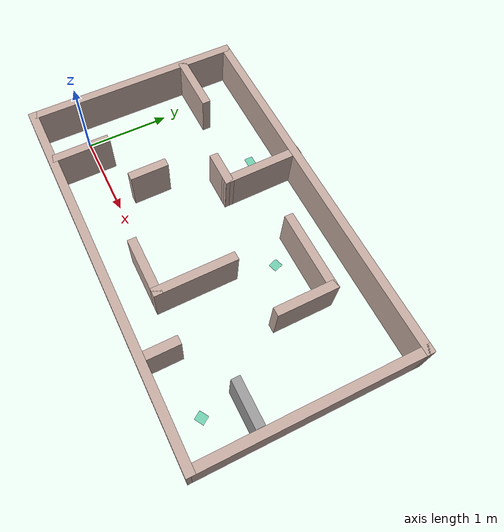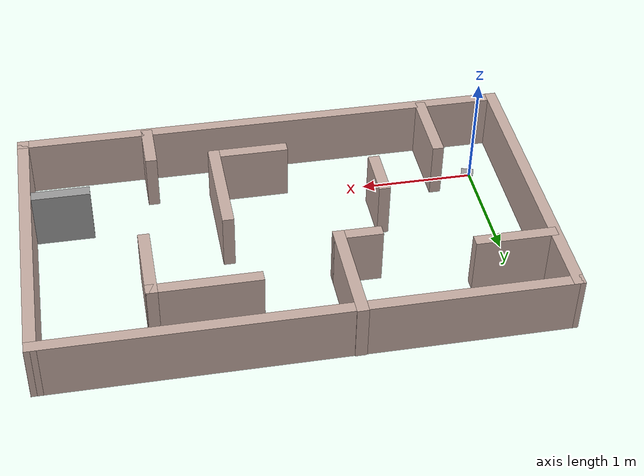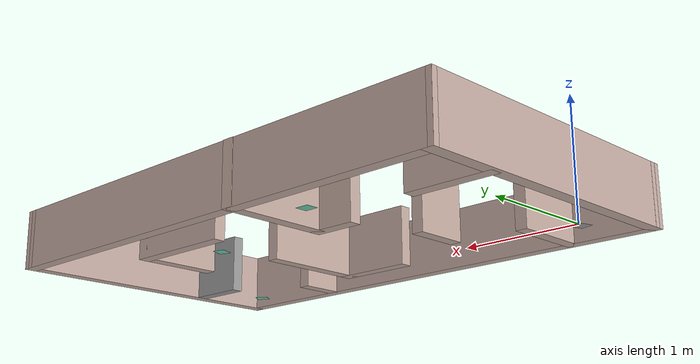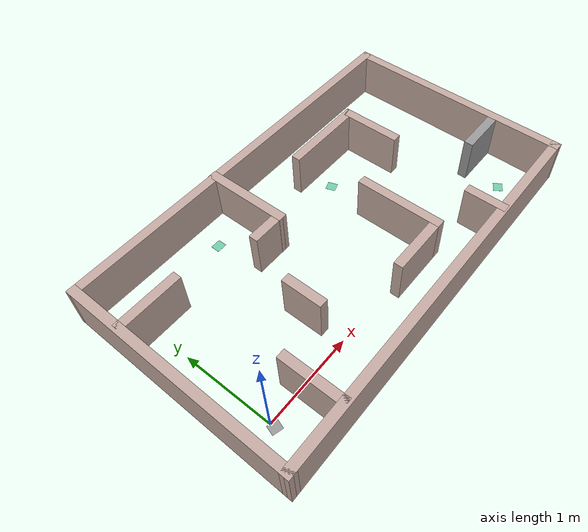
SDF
<?xml version='1.0'?>
<sdf version='1.7'>
  <model name='robo_map1'>
    <pose>1.8545 0.753018 0 0 -0 0</pose>

    <link name='Wall_13'>
      <collision name='Wall_13_Collision'>
        <geometry>
          <box>
            <size>4.409 0.1 0.5</size>
          </box>
        </geometry>
        <pose>0 0 0.25 0 -0 0</pose>
      </collision>
      <visual name='Wall_13_Visual'>
        <pose>0 0 0.25 0 -0 0</pose>
        <geometry>
          <box>
            <size>4.409 0.1 0.5</size>
          </box>
        </geometry>
        <material>
          <script>
            <uri>file://media/materials/scripts/gazebo.material</uri>
            <name>Gazebo/Grey</name>
          </script>
          <ambient>0.760784 0.662745 0.627451 1</ambient>
        </material>
        <meta>
          <layer>0</layer>
        </meta>
      </visual>
      <pose>0.009 1.24698 0 0 -0 0</pose>
    </link>
    <link name='Wall_15'>
      <collision name='Wall_15_Collision'>
        <geometry>
          <box>
            <size>4.409 0.1 0.5</size>
          </box>
        </geometry>
        <pose>0 0 0.25 0 -0 0</pose>
      </collision>
      <visual name='Wall_15_Visual'>
        <pose>0 0 0.25 0 -0 0</pose>
        <geometry>
          <box>
            <size>4.409 0.1 0.5</size>
          </box>
        </geometry>
        <material>
          <script>
            <uri>file://media/materials/scripts/gazebo.material</uri>
            <name>Gazebo/Grey</name>
          </script>
          <ambient>0.760784 0.662745 0.627451 1</ambient>
        </material>
        <meta>
          <layer>0</layer>
        </meta>
      </visual>
      <pose>-0.009 -1.25302 0 0 -0 0</pose>
    </link>
    <link name='Wall_17'>
      <collision name='Wall_17_Collision'>
        <geometry>
          <box>
            <size>2.60006 0.1 0.5</size>
          </box>
        </geometry>
        <pose>0 0 0.25 0 -0 0</pose>
      </collision>
      <visual name='Wall_17_Visual'>
        <pose>0 0 0.25 0 -0 0</pose>
        <geometry>
          <box>
            <size>2.60006 0.1 0.5</size>
          </box>
        </geometry>
        <material>
          <script>
            <uri>file://media/materials/scripts/gazebo.material</uri>
            <name>Gazebo/Grey</name>
          </script>
          <ambient>0.760784 0.662745 0.627451 1</ambient>
        </material>
        <meta>
          <layer>0</layer>
        </meta>
      </visual>
      <pose>2.1545 -0.003018 0 0 -0 -1.578</pose>
    </link>
    <link name='Wall_19'>
      <collision name='Wall_19_Collision'>
        <geometry>
          <box>
            <size>0.7 0.1 0.5</size>
          </box>
        </geometry>
        <pose>0 0 0.25 0 -0 0</pose>
      </collision>
      <visual name='Wall_19_Visual'>
        <pose>0 0 0.25 0 -0 0</pose>
        <geometry>
          <box>
            <size>0.7 0.1 0.5</size>
          </box>
        </geometry>
        <material>
          <script>
            <uri>file://media/materials/scripts/gazebo.material</uri>
            <name>Gazebo/Grey</name>
          </script>
          <ambient>0.760784 0.662745 0.627451 1</ambient>
        </material>
        <meta>
          <layer>0</layer>
        </meta>
      </visual>
      <pose>-1.4815 -0.926018 0 0 -0 -1.5708</pose>
    </link>
    <link name='Wall_21'>
      <collision name='Wall_21_Collision'>
        <geometry>
          <box>
            <size>0.95 0.1 0.5</size>
          </box>
        </geometry>
        <pose>0 0 0.25 0 -0 0</pose>
      </collision>
      <visual name='Wall_21_Visual'>
        <pose>0 0 0.25 0 -0 0</pose>
        <geometry>
          <box>
            <size>0.95 0.1 0.5</size>
          </box>
        </geometry>
        <material>
          <script>
            <uri>file://media/materials/scripts/gazebo.material</uri>
            <name>Gazebo/Grey</name>
          </script>
          <ambient>0.760784 0.662745 0.627451 1</ambient>
        </material>
        <meta>
          <layer>0</layer>
        </meta>
      </visual>
      <pose>-0.388 0.827982 0 0 -0 -1.56256</pose>
    </link>
    <link name='Wall_22'>
      <collision name='Wall_22_Collision'>
        <geometry>
          <box>
            <size>0.415002 0.1 0.5</size>
          </box>
        </geometry>
        <pose>0 0 0.25 0 -0 0</pose>
      </collision>
      <visual name='Wall_22_Visual'>
        <pose>0 0 0.25 0 -0 0</pose>
        <geometry>
          <box>
            <size>0.415002 0.1 0.5</size>
          </box>
        </geometry>
        <material>
          <script>
            <uri>file://media/materials/scripts/gazebo.material</uri>
            <name>Gazebo/Grey</name>
          </script>
          <ambient>0.760784 0.662745 0.627451 1</ambient>
        </material>
        <meta>
          <layer>0</layer>
        </meta>
      </visual>
      <pose>-0.542 0.403482 0 0 -0 3.13842</pose>
    </link>
    <link name='Wall_24'>
      <collision name='Wall_24_Collision'>
        <geometry>
          <box>
            <size>0.450219 0.1 0.5</size>
          </box>
        </geometry>
        <pose>0 0 0.25 0 -0 0</pose>
      </collision>
      <visual name='Wall_24_Visual'>
        <pose>0 0 0.25 0 -0 0</pose>
        <geometry>
          <box>
            <size>0.450219 0.1 0.5</size>
          </box>
        </geometry>
        <material>
          <script>
            <uri>file://media/materials/scripts/gazebo.material</uri>
            <name>Gazebo/Grey</name>
          </script>
          <ambient>0.760784 0.662745 0.627451 1</ambient>
        </material>
        <meta>
          <layer>0</layer>
        </meta>
      </visual>
      <pose>-0.8895 -0.338018 0 0 -0 -1.5708</pose>
    </link>
    <link name='Wall_26'>
      <collision name='Wall_26_Collision'>
        <geometry>
          <box>
            <size>0.700417 0.1 0.5</size>
          </box>
        </geometry>
        <pose>0 0 0.25 0 -0 0</pose>
      </collision>
      <visual name='Wall_26_Visual'>
        <pose>0 0 0.25 0 -0 0</pose>
        <geometry>
          <box>
            <size>0.700417 0.1 0.5</size>
          </box>
        </geometry>
        <material>
          <script>
            <uri>file://media/materials/scripts/gazebo.material</uri>
            <name>Gazebo/Grey</name>
          </script>
          <ambient>0.760784 0.662745 0.627451 1</ambient>
        </material>
        <meta>
          <layer>0</layer>
        </meta>
      </visual>
      <pose>-1.8145 0.659982 0 0 -0 0</pose>
    </link>
    <link name='Wall_29'>
      <collision name='Wall_29_Collision'>
        <geometry>
          <box>
            <size>0.7 0.1 0.5</size>
          </box>
        </geometry>
        <pose>0 0 0.25 0 -0 0</pose>
      </collision>
      <visual name='Wall_29_Visual'>
        <pose>0 0 0.25 0 -0 0</pose>
        <geometry>
          <box>
            <size>0.7 0.1 0.5</size>
          </box>
        </geometry>
        <material>
          <script>
            <uri>file://media/materials/scripts/gazebo.material</uri>
            <name>Gazebo/Grey</name>
          </script>
          <ambient>0.760784 0.662745 0.627451 1</ambient>
        </material>
        <meta>
          <layer>0</layer>
        </meta>
      </visual>
      <pose>0.1885 -0.836018 0 0 -0 0</pose>
    </link>
    <link name='Wall_30'>
      <collision name='Wall_30_Collision'>
        <geometry>
          <box>
            <size>0.950251 0.1 0.5</size>
          </box>
        </geometry>
        <pose>0 0 0.25 0 -0 0</pose>
      </collision>
      <visual name='Wall_30_Visual'>
        <pose>0 0 0.25 0 -0 0</pose>
        <geometry>
          <box>
            <size>0.950251 0.1 0.5</size>
          </box>
        </geometry>
        <material>
          <script>
            <uri>file://media/materials/scripts/gazebo.material</uri>
            <name>Gazebo/Grey</name>
          </script>
          <ambient>0.760784 0.662745 0.627451 1</ambient>
        </material>
        <meta>
          <layer>0</layer>
        </meta>
      </visual>
      <pose>0.4885 -0.411018 0 0 -0 1.5708</pose>
    </link>
    <link name='Wall_32'>
      <collision name='Wall_32_Collision'>
        <geometry>
          <box>
            <size>0.95 0.1 0.5</size>
          </box>
        </geometry>
        <pose>0 0 0.25 0 -0 0</pose>
      </collision>
      <visual name='Wall_32_Visual'>
        <pose>0 0 0.25 0 -0 0</pose>
        <geometry>
          <box>
            <size>0.95 0.1 0.5</size>
          </box>
        </geometry>
        <material>
          <script>
            <uri>file://media/materials/scripts/gazebo.material</uri>
            <name>Gazebo/Grey</name>
          </script>
          <ambient>0.760784 0.662745 0.627451 1</ambient>
        </material>
        <meta>
          <layer>0</layer>
        </meta>
      </visual>
      <pose>0.7775 0.777982 0 0 -0 0</pose>
    </link>
    <link name='Wall_33'>
      <collision name='Wall_33_Collision'>
        <geometry>
          <box>
            <size>0.705 0.1 0.5</size>
          </box>
        </geometry>
        <pose>0 0 0.25 0 -0 0</pose>
      </collision>
      <visual name='Wall_33_Visual'>
        <pose>0 0 0.25 0 -0 0</pose>
        <geometry>
          <box>
            <size>0.705 0.1 0.5</size>
          </box>
        </geometry>
        <material>
          <script>
            <uri>file://media/materials/scripts/gazebo.material</uri>
            <name>Gazebo/Grey</name>
          </script>
          <ambient>0.760784 0.662745 0.627451 1</ambient>
        </material>
        <meta>
          <layer>0</layer>
        </meta>
      </visual>
      <pose>1.2025 0.475482 0 0 -0 -1.5708</pose>
    </link>
    <link name='Wall_35'>
      <collision name='Wall_35_Collision'>
        <geometry>
          <box>
            <size>0.5 0.1 0.5</size>
          </box>
        </geometry>
        <pose>0 0 0.25 0 -0 0</pose>
      </collision>
      <visual name='Wall_35_Visual'>
        <pose>0 0 0.25 0 -0 0</pose>
        <geometry>
          <box>
            <size>0.5 0.1 0.5</size>
          </box>
        </geometry>
        <material>
          <script>
            <uri>file://media/materials/scripts/gazebo.material</uri>
            <name>Gazebo/Grey</name>
          </script>
          <ambient>1 1 1 1</ambient>
        </material>
        <meta>
          <layer>0</layer>
        </meta>
      </visual>
      <pose>1.8495 -0.521018 0 0 -0 0</pose>
    </link>
    <link name='Wall_37'>
      <collision name='Wall_37_Collision'>
        <geometry>
          <box>
            <size>0.450333 0.1 0.5</size>
          </box>
        </geometry>
        <pose>0 0 0.25 0 -0 0</pose>
      </collision>
      <visual name='Wall_37_Visual'>
        <pose>0 0 0.25 0 -0 0</pose>
        <geometry>
          <box>
            <size>0.450333 0.1 0.5</size>
          </box>
        </geometry>
        <material>
          <script>
            <uri>file://media/materials/scripts/gazebo.material</uri>
            <name>Gazebo/Grey</name>
          </script>
          <ambient>0.760784 0.662745 0.627451 1</ambient>
        </material>
        <meta>
          <layer>0</layer>
        </meta>
      </visual>
      <pose>1.0445 -1.05902 0 0 -0 1.5708</pose>
    </link>
    <link name='Wall_42'>
      <collision name='Wall_42_Collision'>
        <geometry>
          <box>
            <size>0.11044 0.1 0.001</size>
          </box>
        </geometry>
        <pose>0 0 0.0005 0 -0 0</pose>
      </collision>
      <visual name='Wall_42_Visual'>
        <pose>0 0 0.0005 0 -0 0</pose>
        <geometry>
          <box>
            <size>0.11044 0.1 0.001</size>
          </box>
        </geometry>
        <material>
          <script>
            <uri>file://media/materials/scripts/gazebo.material</uri>
            <name>Gazebo/Grey</name>
          </script>
          <ambient>1 1 1 1</ambient>
        </material>
        <meta>
          <layer>0</layer>
        </meta>
      </visual>
      <pose>-1.8505 -0.800518 0 0 -0 2.85014</pose>
    </link>
    <link name='Wall_44'>
      <collision name='Wall_44_Collision'>
        <geometry>
          <box>
            <size>0.11 0.1 0.001</size>
          </box>
        </geometry>
        <pose>0 0 0.0005 0 -0 0</pose>
      </collision>
      <visual name='Wall_44_Visual'>
        <pose>0 0 0.0005 0 -0 0</pose>
        <geometry>
          <box>
            <size>0.11 0.1 0.001</size>
          </box>
        </geometry>
        <material>
          <script>
            <uri>file://media/materials/scripts/gazebo.material</uri>
            <name>Gazebo/Grey</name>
          </script>
          <ambient>0.435294 0.796078 0.67451 1</ambient>
        </material>
        <meta>
          <layer>0</layer>
        </meta>
      </visual>
      <pose>1.7035 -0.924518 0 0 -0 0.558599</pose>
    </link>
    <link name='Wall_46'>
      <collision name='Wall_46_Collision'>
        <geometry>
          <box>
            <size>0.11 0.1 0.001</size>
          </box>
        </geometry>
        <pose>0 0 0.0005 0 -0 0</pose>
      </collision>
      <visual name='Wall_46_Visual'>
        <pose>0 0 0.0005 0 -0 0</pose>
        <geometry>
          <box>
            <size>0.11 0.1 0.001</size>
          </box>
        </geometry>
        <material>
          <script>
            <uri>file://media/materials/scripts/gazebo.material</uri>
            <name>Gazebo/Grey</name>
          </script>
          <ambient>0.435294 0.796078 0.67451 1</ambient>
        </material>
        <meta>
          <layer>0</layer>
        </meta>
      </visual>
      <pose>-0.7805 0.917982 0 0 -0 0</pose>
    </link>
    <link name='Wall_48'>
      <collision name='Wall_48_Collision'>
        <geometry>
          <box>
            <size>0.11 0.1 0.001</size>
          </box>
        </geometry>
        <pose>0 0 0.0005 0 -0 0</pose>
      </collision>
      <visual name='Wall_48_Visual'>
        <pose>0 0 0.0005 0 -0 0</pose>
        <geometry>
          <box>
            <size>0.11 0.1 0.001</size>
          </box>
        </geometry>
        <material>
          <script>
            <uri>file://media/materials/scripts/gazebo.material</uri>
            <name>Gazebo/Grey</name>
          </script>
          <ambient>0.435294 0.796078 0.67451 1</ambient>
        </material>
        <meta>
          <layer>0</layer>
        </meta>
      </visual>
      <pose>0.579 0.522482 0 0 -0 -1.24905</pose>
    </link>
    <link name='Wall_5'>
      <collision name='Wall_5_Collision'>
        <geometry>
          <box>
            <size>2.60002 0.1 0.5</size>
          </box>
        </geometry>
        <pose>0 0 0.25 0 -0 0</pose>
      </collision>
      <visual name='Wall_5_Visual'>
        <pose>0 0 0.25 0 -0 0</pose>
        <geometry>
          <box>
            <size>2.60002 0.1 0.5</size>
          </box>
        </geometry>
        <material>
          <script>
            <uri>file://media/materials/scripts/gazebo.material</uri>
            <name>Gazebo/Grey</name>
          </script>
          <ambient>0.760784 0.662745 0.627451 1</ambient>
        </material>
        <meta>
          <layer>0</layer>
        </meta>
      </visual>
      <pose>-2.1545 -0.003018 0 0 -0 1.5636</pose>
    </link>
    <static>1</static>
  </model>
</sdf>
